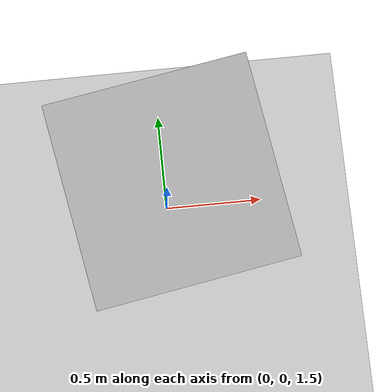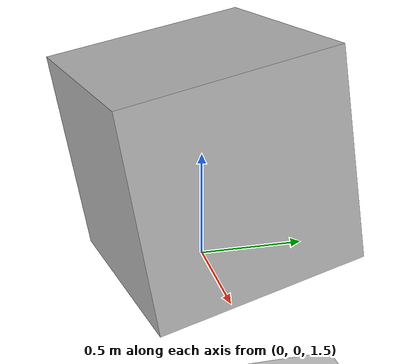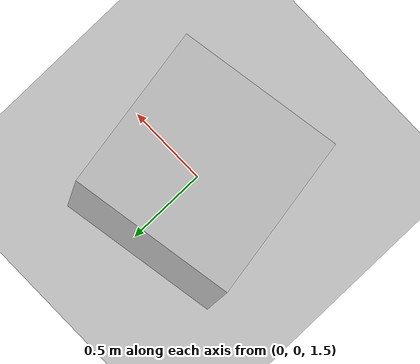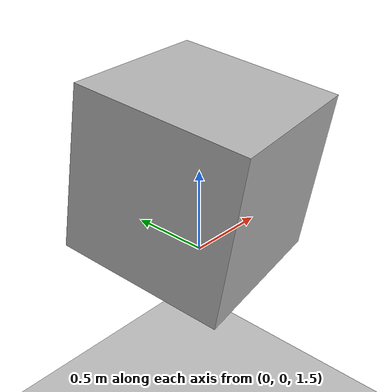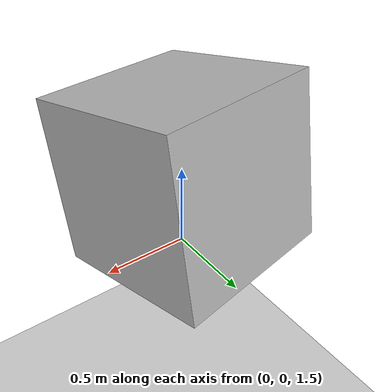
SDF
<?xml version="1.0"?>
<sdf version="1.4">
  <world name="default">

    <!-- Ground Plane -->
    <include>
      <uri>model://ground_plane</uri>
    </include>

    <include>
      <uri>model://sun</uri>
    </include>

    <model name="box">
      <gravity>0</gravity>
      <pose>0 0 2 0.17 0 0.17</pose>
      <link name="link">
        <collision name="collision">
          <geometry>
            <box>
              <size>1 1 1</size>
            </box>
          </geometry>

          <surface>
            <friction>
              <ode>
                <mu>0.00</mu>
                <mu2>0.00</mu2>
              </ode>
            </friction>
          </surface>
        </collision>

        <visual name="visual">
          <geometry>
            <box>
              <size>1 1 1</size>
            </box>
          </geometry>
        </visual>
      </link>

      <plugin name="model_push" filename="libmodel_push.so"/>
    </model>
  </world>
</sdf>
